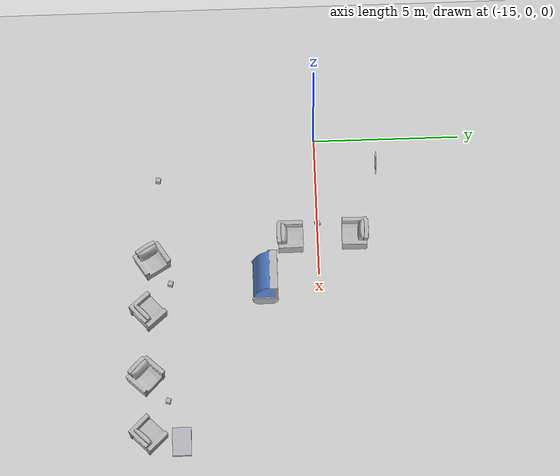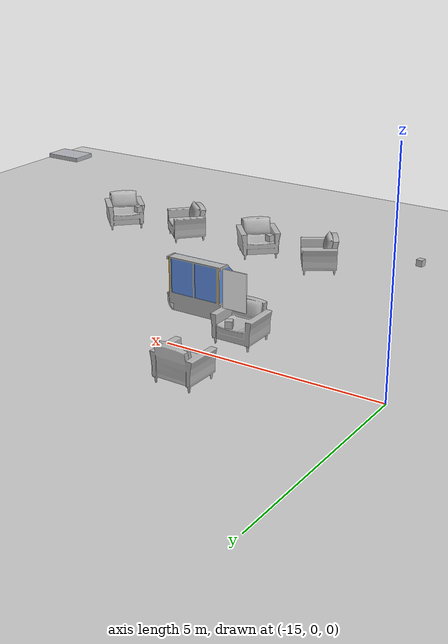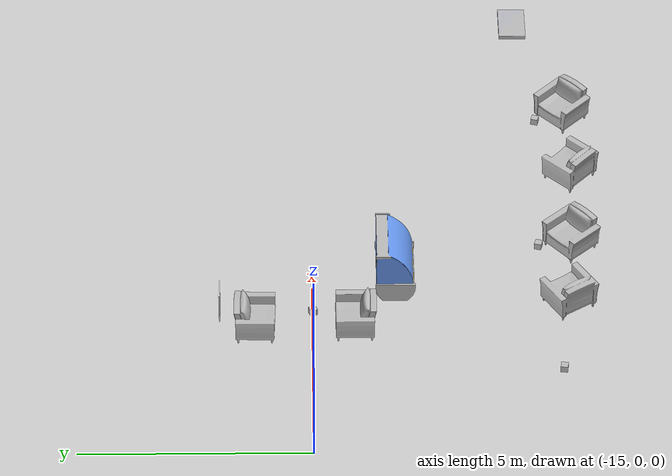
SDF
<sdf version="1.4">
 <world name="default">
  <model name="ground_plane">
   <static>1</static>
   <link name="link">
    <collision name="collision">
     <geometry><plane><normal>0 0 1</normal><size>100 100</size></plane></geometry>
     <surface><friction><ode><mu>100</mu><mu2>50</mu2></ode></friction></surface>
    </collision>
    <visual name="visual">
     <cast_shadows>0</cast_shadows>
     <geometry><plane><normal>0 0 1</normal><size>100 100</size></plane></geometry>
     <material>
      <script><uri>file://media/materials/scripts/gazebo.material</uri><name>Gazebo/Grey</name></script>
     </material>
    </visual>
   </link>
  </model>
  <model name="armchair">
   <static>1</static>
   <pose>-11.6106 0.839206 0 0 -0 1.54611</pose>
   <link name="body">
    <inertial>
     <mass>5</mass>
     <inertia><ixx>1</ixx><ixy>0</ixy><iyy>1</iyy><ixz>0</ixz><iyz>0</iyz><izz>1</izz></inertia>
    </inertial>
    <collision name="collision">
     <geometry><mesh><uri>model://armchair/meshes/armchair.dae</uri></mesh></geometry>
    </collision>
    <visual name="visual">
     <geometry><mesh><uri>model://armchair/meshes/armchair.dae</uri></mesh></geometry>
    </visual>
   </link>
  </model>
  <model name="armchair_0">
   <static>1</static>
   <pose>-10.9107 -0.5043 0 0 0 -1.5708</pose>
   <link name="body">
    <inertial>
     <mass>5</mass>
     <inertia><ixx>1</ixx><ixy>0</ixy><iyy>1</iyy><ixz>0</ixz><iyz>0</iyz><izz>1</izz></inertia>
    </inertial>
    <collision name="collision">
     <geometry><mesh><uri>model://armchair/meshes/armchair.dae</uri></mesh></geometry>
    </collision>
    <visual name="visual">
     <geometry><mesh><uri>model://armchair/meshes/armchair.dae</uri></mesh></geometry>
    </visual>
   </link>
  </model>
  <model name="armchair_1">
   <static>1</static>
   <pose>-4.46909 -5.22255 0 0 0 -0.790151</pose>
   <link name="body">
    <inertial>
     <mass>5</mass>
     <inertia><ixx>1</ixx><ixy>0</ixy><iyy>1</iyy><ixz>0</ixz><iyz>0</iyz><izz>1</izz></inertia>
    </inertial>
    <collision name="collision">
     <geometry><mesh><uri>model://armchair/meshes/armchair.dae</uri></mesh></geometry>
    </collision>
    <visual name="visual">
     <geometry><mesh><uri>model://armchair/meshes/armchair.dae</uri></mesh></geometry>
    </visual>
   </link>
  </model>
  <model name="armchair_2">
   <static>1</static>
   <pose>-5.89268 -5.74266 0 0 0 -2.32605</pose>
   <link name="body">
    <inertial>
     <mass>5</mass>
     <inertia><ixx>1</ixx><ixy>0</ixy><iyy>1</iyy><ixz>0</ixz><iyz>0</iyz><izz>1</izz></inertia>
    </inertial>
    <collision name="collision">
     <geometry><mesh><uri>model://armchair/meshes/armchair.dae</uri></mesh></geometry>
    </collision>
    <visual name="visual">
     <geometry><mesh><uri>model://armchair/meshes/armchair.dae</uri></mesh></geometry>
    </visual>
   </link>
  </model>
  <model name="armchair_3">
   <static>1</static>
   <pose>-8.73138 -5.20725 0 0 0 -0.842515</pose>
   <link name="body">
    <inertial>
     <mass>5</mass>
     <inertia><ixx>1</ixx><ixy>0</ixy><iyy>1</iyy><ixz>0</ixz><iyz>0</iyz><izz>1</izz></inertia>
    </inertial>
    <collision name="collision">
     <geometry><mesh><uri>model://armchair/meshes/armchair.dae</uri></mesh></geometry>
    </collision>
    <visual name="visual">
     <geometry><mesh><uri>model://armchair/meshes/armchair.dae</uri></mesh></geometry>
    </visual>
   </link>
  </model>
  <model name="armchair_4">
   <static>1</static>
   <pose>-10.0003 -5.64243 0 0 0 -2.58139</pose>
   <link name="body">
    <inertial>
     <mass>5</mass>
     <inertia><ixx>1</ixx><ixy>0</ixy><iyy>1</iyy><ixz>0</ixz><iyz>0</iyz><izz>1</izz></inertia>
    </inertial>
    <collision name="collision">
     <geometry><mesh><uri>model://armchair/meshes/armchair.dae</uri></mesh></geometry>
    </collision>
    <visual name="visual">
     <geometry><mesh><uri>model://armchair/meshes/armchair.dae</uri></mesh></geometry>
    </visual>
   </link>
  </model>
  <model name="shelf">
   <static>1</static>
   <pose>-3.36804 -4.0405 2.05004 0 -0 0</pose>
   <link name="body">
    <inertial>
     <mass>5</mass>
     <inertia><ixx>1</ixx><ixy>0</ixy><iyy>1</iyy><ixz>0</ixz><iyz>0</iyz><izz>1</izz></inertia>
    </inertial>
    <collision name="collision">
     <geometry><mesh><uri>model://shelf/meshes/shelf.dae</uri></mesh></geometry>
    </collision>
    <visual name="visual"><geometry><mesh><uri>model://shelf/meshes/shelf.dae</uri></mesh></geometry></visual>
   </link>
  </model>
  <model name="showcase">
   <static>1</static>
   <pose>-8.99939 -1.38169 0 0 -0 3.14159</pose>
   <link name="body">
    <inertial>
     <mass>5</mass>
     <inertia><ixx>1</ixx><ixy>0</ixy><iyy>1</iyy><ixz>0</ixz><iyz>0</iyz><izz>1</izz></inertia>
    </inertial>
    <collision name="collision">
     <geometry><mesh><uri>model://showcase/meshes/showcase.dae</uri></mesh></geometry>
    </collision>
    <visual name="visual">
     <geometry><mesh><uri>model://showcase/meshes/showcase.dae</uri></mesh></geometry>
    </visual>
   </link>
  </model>
  <model name="dashed_picture">
   <static>1</static>
   <pose>-13.1607 1.98849 2.09935 1.5708 -0 0</pose>
   <link name="body">
    <inertial>
     <mass>5</mass>
     <inertia><ixx>1</ixx><ixy>0</ixy><iyy>1</iyy><ixz>0</ixz><iyz>0</iyz><izz>1</izz></inertia>
    </inertial>
    <collision name="collision">
     <geometry><mesh><uri>model://dashed_picture/meshes/dashed_picture.dae</uri></mesh></geometry>
    </collision>
    <visual name="visual">
     <geometry><mesh><uri>model://dashed_picture/meshes/dashed_picture.dae</uri></mesh></geometry>
    </visual>
   </link>
  </model>
  <model name="box">
   <static>1</static>
   <pose>-11.5671 -0.102439 0.729473 0 -0 0.399654</pose>
   <link name="body">
    <inertial>
     <mass>5</mass>
     <inertia><ixx>1</ixx><ixy>0</ixy><iyy>1</iyy><ixz>0</ixz><iyz>0</iyz><izz>1</izz></inertia>
    </inertial>
    <collision name="collision">
     <geometry><mesh><uri>model://box/meshes/box.dae</uri></mesh></geometry>
    </collision>
    <visual name="visual"><geometry><mesh><uri>model://box/meshes/box.dae</uri></mesh></geometry></visual>
   </link>
  </model>
  <model name="box_0">
   <static>1</static>
   <pose>-13.3849 -5.40263 0.739411 0 0 -0.134064</pose>
   <link name="body">
    <inertial>
     <mass>5</mass>
     <inertia><ixx>1</ixx><ixy>0</ixy><iyy>1</iyy><ixz>0</ixz><iyz>0</iyz><izz>1</izz></inertia>
    </inertial>
    <collision name="collision">
     <geometry><mesh><uri>model://box/meshes/box.dae</uri></mesh></geometry>
    </collision>
    <visual name="visual"><geometry><mesh><uri>model://box/meshes/box.dae</uri></mesh></geometry></visual>
   </link>
  </model>
  <model name="box_1">
   <static>1</static>
   <pose>-9.59378 -5.00953 0.734111 0 0 -0.278177</pose>
   <link name="body">
    <inertial>
     <mass>5</mass>
     <inertia><ixx>1</ixx><ixy>0</ixy><iyy>1</iyy><ixz>0</ixz><iyz>0</iyz><izz>1</izz></inertia>
    </inertial>
    <collision name="collision">
     <geometry><mesh><uri>model://box/meshes/box.dae</uri></mesh></geometry>
    </collision>
    <visual name="visual"><geometry><mesh><uri>model://box/meshes/box.dae</uri></mesh></geometry></visual>
   </link>
  </model>
  <model name="box_2">
   <static>1</static>
   <pose>-5.49064 -5.11976 0.733567 0 0 -0.272936</pose>
   <link name="body">
    <inertial>
     <mass>5</mass>
     <inertia><ixx>1</ixx><ixy>0</ixy><iyy>1</iyy><ixz>0</ixz><iyz>0</iyz><izz>1</izz></inertia>
    </inertial>
    <collision name="collision">
     <geometry><mesh><uri>model://box/meshes/box.dae</uri></mesh></geometry>
    </collision>
    <visual name="visual"><geometry><mesh><uri>model://box/meshes/box.dae</uri></mesh></geometry></visual>
   </link>
  </model>
 </world>
</sdf>
